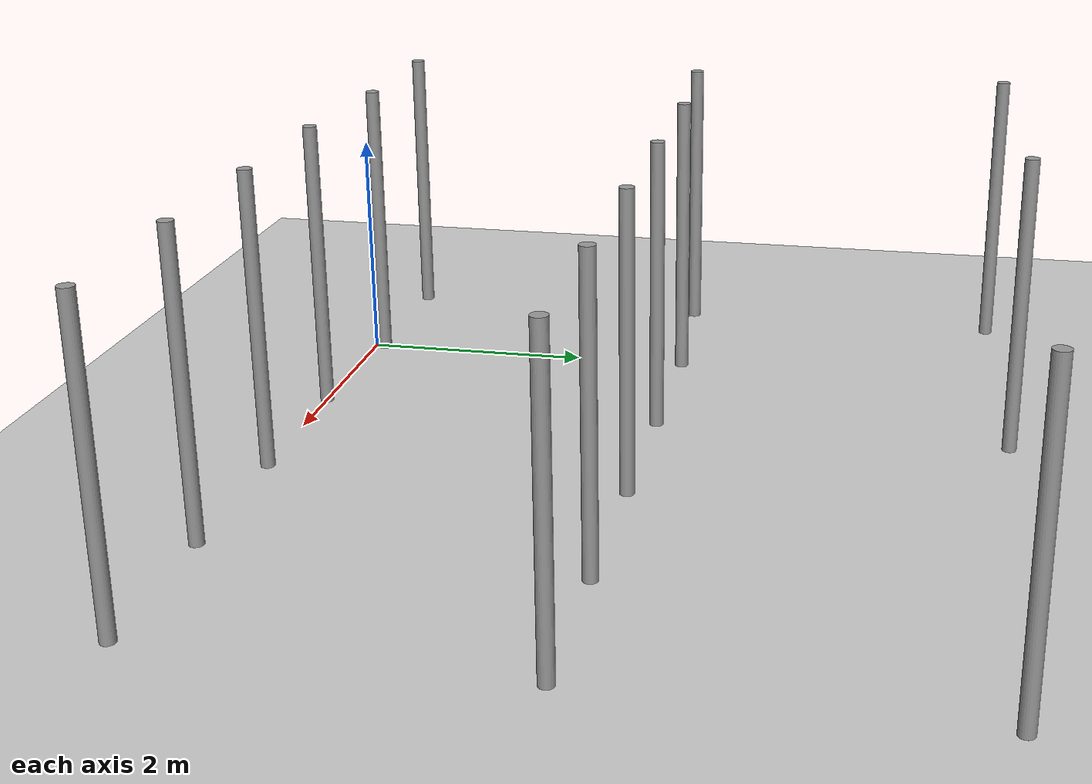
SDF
<sdf version="1.6">
 <world name="default">
  <model name="ground_plane">
   <static>1</static>
   <link name="link">
    <collision name="collision">
     <geometry><plane><normal>0 0 1</normal><size>100 100</size></plane></geometry>
     <surface><friction><ode><mu>100</mu><mu2>50</mu2></ode></friction></surface>
    </collision>
    <visual name="visual">
     <cast_shadows>0</cast_shadows>
     <geometry><plane><normal>0 0 1</normal><size>100 100</size></plane></geometry>
     <material>
      <script><uri>file://media/materials/scripts/gazebo.material</uri><name>Gazebo/Grey</name></script>
     </material>
    </visual>
   </link>
  </model>
  <model name="pole_8">
   <link name="link_0">
    <inertial>
     <mass>0.0364582</mass>
     <inertia>
      <ixx>0.00312124</ixx>
      <ixy>0</ixy>
      <ixz>0</ixz>
      <iyy>0.00312124</iyy>
      <iyz>0</iyz>
      <izz>0.00016615</izz>
     </inertia>
    </inertial>
    <visual name="visual">
     <geometry><cylinder><radius>0.06</radius><length>2.5</length></cylinder></geometry>
     <material>
      <lighting>1</lighting>
      <script><uri>file://media/materials/scripts/gazebo.material</uri><name>Gazebo/Grey</name></script>
      <ambient>0.3 0.3 0.3 1</ambient>
      <diffuse>0.7 0.7 0.7 1</diffuse>
      <specular>0.01 0.01 0.01 1</specular>
      <emissive>0 0 0 1</emissive>
      <shader type="vertex"><normal_map>__default__</normal_map></shader>
     </material>
    </visual>
    <collision name="collision">
     <geometry><cylinder><radius>0.06</radius><length>2.5</length></cylinder></geometry>
     <surface>
      <friction>
       <ode><mu>1</mu><mu2>1</mu2><fdir1>0 0 0</fdir1><slip1>0</slip1><slip2>0</slip2></ode>
       <torsional>
        <coefficient>1</coefficient>
        <patch_radius>0</patch_radius>
        <surface_radius>0</surface_radius>
        <use_patch_radius>1</use_patch_radius>
        <ode><slip>0</slip></ode>
       </torsional>
      </friction>
      <bounce><restitution_coefficient>0</restitution_coefficient><threshold>1e+06</threshold></bounce>
      <contact>
       <collide_without_contact>0</collide_without_contact>
       <collide_without_contact_bitmask>1</collide_without_contact_bitmask>
       <collide_bitmask>1</collide_bitmask>
       <ode>
        <soft_cfm>0</soft_cfm>
        <soft_erp>0.2</soft_erp>
        <kp>1e+13</kp>
        <kd>1</kd>
        <max_vel>0.01</max_vel>
        <min_depth>0</min_depth>
       </ode>
       <bullet>
        <split_impulse>1</split_impulse>
        <split_impulse_penetration_threshold>-0.01</split_impulse_penetration_threshold>
        <soft_cfm>0</soft_cfm>
        <soft_erp>0.2</soft_erp>
        <kp>1e+13</kp>
        <kd>1</kd>
       </bullet>
      </contact>
     </surface>
    </collision>
   </link>
   <static>0</static>
   <pose>1.40422 0.001483 1.24999 -1e-06 -0 -0.018484</pose>
  </model>
  <model name="pole_9">
   <link name="link_0">
    <inertial>
     <mass>0.0364582</mass>
     <inertia>
      <ixx>0.00312124</ixx>
      <ixy>0</ixy>
      <ixz>0</ixz>
      <iyy>0.00312124</iyy>
      <iyz>0</iyz>
      <izz>0.00016615</izz>
     </inertia>
    </inertial>
    <visual name="visual">
     <geometry><cylinder><radius>0.06</radius><length>2.5</length></cylinder></geometry>
     <material>
      <lighting>1</lighting>
      <script><uri>file://media/materials/scripts/gazebo.material</uri><name>Gazebo/Grey</name></script>
      <ambient>0.3 0.3 0.3 1</ambient>
      <diffuse>0.7 0.7 0.7 1</diffuse>
      <specular>0.01 0.01 0.01 1</specular>
      <emissive>0 0 0 1</emissive>
      <shader type="vertex"><normal_map>__default__</normal_map></shader>
     </material>
    </visual>
    <collision name="collision">
     <geometry><cylinder><radius>0.06</radius><length>2.5</length></cylinder></geometry>
     <surface>
      <friction>
       <ode><mu>1</mu><mu2>1</mu2><fdir1>0 0 0</fdir1><slip1>0</slip1><slip2>0</slip2></ode>
       <torsional>
        <coefficient>1</coefficient>
        <patch_radius>0</patch_radius>
        <surface_radius>0</surface_radius>
        <use_patch_radius>1</use_patch_radius>
        <ode><slip>0</slip></ode>
       </torsional>
      </friction>
      <bounce><restitution_coefficient>0</restitution_coefficient><threshold>1e+06</threshold></bounce>
      <contact>
       <collide_without_contact>0</collide_without_contact>
       <collide_without_contact_bitmask>1</collide_without_contact_bitmask>
       <collide_bitmask>1</collide_bitmask>
       <ode>
        <soft_cfm>0</soft_cfm>
        <soft_erp>0.2</soft_erp>
        <kp>1e+13</kp>
        <kd>1</kd>
        <max_vel>0.01</max_vel>
        <min_depth>0</min_depth>
       </ode>
       <bullet>
        <split_impulse>1</split_impulse>
        <split_impulse_penetration_threshold>-0.01</split_impulse_penetration_threshold>
        <soft_cfm>0</soft_cfm>
        <soft_erp>0.2</soft_erp>
        <kp>1e+13</kp>
        <kd>1</kd>
       </bullet>
      </contact>
     </surface>
    </collision>
   </link>
   <static>0</static>
   <pose>2.80803 0.001707 1.25 -1e-06 -1e-06 -0.037733</pose>
  </model>
  <model name="pole_10">
   <link name="link_0">
    <inertial>
     <mass>0.0364582</mass>
     <inertia>
      <ixx>0.00312124</ixx>
      <ixy>0</ixy>
      <ixz>0</ixz>
      <iyy>0.00312124</iyy>
      <iyz>0</iyz>
      <izz>0.00016615</izz>
     </inertia>
    </inertial>
    <visual name="visual">
     <geometry><cylinder><radius>0.06</radius><length>2.5</length></cylinder></geometry>
     <material>
      <lighting>1</lighting>
      <script><uri>file://media/materials/scripts/gazebo.material</uri><name>Gazebo/Grey</name></script>
      <ambient>0.3 0.3 0.3 1</ambient>
      <diffuse>0.7 0.7 0.7 1</diffuse>
      <specular>0.01 0.01 0.01 1</specular>
      <emissive>0 0 0 1</emissive>
      <shader type="vertex"><normal_map>__default__</normal_map></shader>
     </material>
    </visual>
    <collision name="collision">
     <geometry><cylinder><radius>0.06</radius><length>2.5</length></cylinder></geometry>
     <surface>
      <friction>
       <ode><mu>1</mu><mu2>1</mu2><fdir1>0 0 0</fdir1><slip1>0</slip1><slip2>0</slip2></ode>
       <torsional>
        <coefficient>1</coefficient>
        <patch_radius>0</patch_radius>
        <surface_radius>0</surface_radius>
        <use_patch_radius>1</use_patch_radius>
        <ode><slip>0</slip></ode>
       </torsional>
      </friction>
      <bounce><restitution_coefficient>0</restitution_coefficient><threshold>1e+06</threshold></bounce>
      <contact>
       <collide_without_contact>0</collide_without_contact>
       <collide_without_contact_bitmask>1</collide_without_contact_bitmask>
       <collide_bitmask>1</collide_bitmask>
       <ode>
        <soft_cfm>0</soft_cfm>
        <soft_erp>0.2</soft_erp>
        <kp>1e+13</kp>
        <kd>1</kd>
        <max_vel>0.01</max_vel>
        <min_depth>0</min_depth>
       </ode>
       <bullet>
        <split_impulse>1</split_impulse>
        <split_impulse_penetration_threshold>-0.01</split_impulse_penetration_threshold>
        <soft_cfm>0</soft_cfm>
        <soft_erp>0.2</soft_erp>
        <kp>1e+13</kp>
        <kd>1</kd>
       </bullet>
      </contact>
     </surface>
    </collision>
   </link>
   <static>0</static>
   <pose>4.20396 0.00159 1.25 -0 2e-06 -0.021452</pose>
  </model>
  <model name="pole_11">
   <link name="link_0">
    <inertial>
     <mass>0.0364582</mass>
     <inertia>
      <ixx>0.00312124</ixx>
      <ixy>0</ixy>
      <ixz>0</ixz>
      <iyy>0.00312124</iyy>
      <iyz>0</iyz>
      <izz>0.00016615</izz>
     </inertia>
    </inertial>
    <visual name="visual">
     <geometry><cylinder><radius>0.06</radius><length>2.5</length></cylinder></geometry>
     <material>
      <lighting>1</lighting>
      <script><uri>file://media/materials/scripts/gazebo.material</uri><name>Gazebo/Grey</name></script>
      <ambient>0.3 0.3 0.3 1</ambient>
      <diffuse>0.7 0.7 0.7 1</diffuse>
      <specular>0.01 0.01 0.01 1</specular>
      <emissive>0 0 0 1</emissive>
      <shader type="vertex"><normal_map>__default__</normal_map></shader>
     </material>
    </visual>
    <collision name="collision">
     <geometry><cylinder><radius>0.06</radius><length>2.5</length></cylinder></geometry>
     <surface>
      <friction>
       <ode><mu>1</mu><mu2>1</mu2><fdir1>0 0 0</fdir1><slip1>0</slip1><slip2>0</slip2></ode>
       <torsional>
        <coefficient>1</coefficient>
        <patch_radius>0</patch_radius>
        <surface_radius>0</surface_radius>
        <use_patch_radius>1</use_patch_radius>
        <ode><slip>0</slip></ode>
       </torsional>
      </friction>
      <bounce><restitution_coefficient>0</restitution_coefficient><threshold>1e+06</threshold></bounce>
      <contact>
       <collide_without_contact>0</collide_without_contact>
       <collide_without_contact_bitmask>1</collide_without_contact_bitmask>
       <collide_bitmask>1</collide_bitmask>
       <ode>
        <soft_cfm>0</soft_cfm>
        <soft_erp>0.2</soft_erp>
        <kp>1e+13</kp>
        <kd>1</kd>
        <max_vel>0.01</max_vel>
        <min_depth>0</min_depth>
       </ode>
       <bullet>
        <split_impulse>1</split_impulse>
        <split_impulse_penetration_threshold>-0.01</split_impulse_penetration_threshold>
        <soft_cfm>0</soft_cfm>
        <soft_erp>0.2</soft_erp>
        <kp>1e+13</kp>
        <kd>1</kd>
       </bullet>
      </contact>
     </surface>
    </collision>
   </link>
   <static>0</static>
   <pose>5.61623 0.001441 1.25 -1e-06 0 -0.020806</pose>
  </model>
  <model name="pole_11_clone">
   <link name="link_0">
    <inertial>
     <mass>0.0364582</mass>
     <inertia>
      <ixx>0.00312124</ixx>
      <ixy>0</ixy>
      <ixz>0</ixz>
      <iyy>0.00312124</iyy>
      <iyz>0</iyz>
      <izz>0.00016615</izz>
     </inertia>
    </inertial>
    <visual name="visual">
     <geometry><cylinder><radius>0.06</radius><length>2.5</length></cylinder></geometry>
     <material>
      <lighting>1</lighting>
      <script><uri>file://media/materials/scripts/gazebo.material</uri><name>Gazebo/Grey</name></script>
      <ambient>0.3 0.3 0.3 1</ambient>
      <diffuse>0.7 0.7 0.7 1</diffuse>
      <specular>0.01 0.01 0.01 1</specular>
      <emissive>0 0 0 1</emissive>
      <shader type="vertex"><normal_map>__default__</normal_map></shader>
     </material>
    </visual>
    <collision name="collision">
     <geometry><cylinder><radius>0.06</radius><length>2.5</length></cylinder></geometry>
     <surface>
      <friction>
       <ode><mu>1</mu><mu2>1</mu2><fdir1>0 0 0</fdir1><slip1>0</slip1><slip2>0</slip2></ode>
       <torsional>
        <coefficient>1</coefficient>
        <patch_radius>0</patch_radius>
        <surface_radius>0</surface_radius>
        <use_patch_radius>1</use_patch_radius>
        <ode><slip>0</slip></ode>
       </torsional>
      </friction>
      <bounce><restitution_coefficient>0</restitution_coefficient><threshold>1e+06</threshold></bounce>
      <contact>
       <collide_without_contact>0</collide_without_contact>
       <collide_without_contact_bitmask>1</collide_without_contact_bitmask>
       <collide_bitmask>1</collide_bitmask>
       <ode>
        <soft_cfm>0</soft_cfm>
        <soft_erp>0.2</soft_erp>
        <kp>1e+13</kp>
        <kd>1</kd>
        <max_vel>0.01</max_vel>
        <min_depth>0</min_depth>
       </ode>
       <bullet>
        <split_impulse>1</split_impulse>
        <split_impulse_penetration_threshold>-0.01</split_impulse_penetration_threshold>
        <soft_cfm>0</soft_cfm>
        <soft_erp>0.2</soft_erp>
        <kp>1e+13</kp>
        <kd>1</kd>
       </bullet>
      </contact>
     </surface>
    </collision>
   </link>
   <static>0</static>
   <pose>0.000716 2.98376 1.24999 -1e-06 0 -0.028327</pose>
  </model>
  <model name="pole_2">
   <link name="link_0">
    <inertial>
     <mass>0.0364582</mass>
     <inertia>
      <ixx>0.00312124</ixx>
      <ixy>0</ixy>
      <ixz>0</ixz>
      <iyy>0.00312124</iyy>
      <iyz>0</iyz>
      <izz>0.00016615</izz>
     </inertia>
    </inertial>
    <visual name="visual">
     <geometry><cylinder><radius>0.06</radius><length>2.5</length></cylinder></geometry>
     <material>
      <lighting>1</lighting>
      <script><uri>file://media/materials/scripts/gazebo.material</uri><name>Gazebo/Grey</name></script>
      <ambient>0.3 0.3 0.3 1</ambient>
      <diffuse>0.7 0.7 0.7 1</diffuse>
      <specular>0.01 0.01 0.01 1</specular>
      <emissive>0 0 0 1</emissive>
      <shader type="vertex"><normal_map>__default__</normal_map></shader>
     </material>
    </visual>
    <collision name="collision">
     <geometry><cylinder><radius>0.06</radius><length>2.5</length></cylinder></geometry>
     <surface>
      <friction>
       <ode><mu>1</mu><mu2>1</mu2><fdir1>0 0 0</fdir1><slip1>0</slip1><slip2>0</slip2></ode>
       <torsional>
        <coefficient>1</coefficient>
        <patch_radius>0</patch_radius>
        <surface_radius>0</surface_radius>
        <use_patch_radius>1</use_patch_radius>
        <ode><slip>0</slip></ode>
       </torsional>
      </friction>
      <bounce><restitution_coefficient>0</restitution_coefficient><threshold>1e+06</threshold></bounce>
      <contact>
       <collide_without_contact>0</collide_without_contact>
       <collide_without_contact_bitmask>1</collide_without_contact_bitmask>
       <collide_bitmask>1</collide_bitmask>
       <ode>
        <soft_cfm>0</soft_cfm>
        <soft_erp>0.2</soft_erp>
        <kp>1e+13</kp>
        <kd>1</kd>
        <max_vel>0.01</max_vel>
        <min_depth>0</min_depth>
       </ode>
       <bullet>
        <split_impulse>1</split_impulse>
        <split_impulse_penetration_threshold>-0.01</split_impulse_penetration_threshold>
        <soft_cfm>0</soft_cfm>
        <soft_erp>0.2</soft_erp>
        <kp>1e+13</kp>
        <kd>1</kd>
       </bullet>
      </contact>
     </surface>
    </collision>
   </link>
   <static>0</static>
   <pose>0.034203 0.094334 1.24999 0 1e-06 0.046858</pose>
  </model>
  <model name="pole_3">
   <link name="link_0">
    <inertial>
     <mass>0.0364582</mass>
     <inertia>
      <ixx>0.00312124</ixx>
      <ixy>0</ixy>
      <ixz>0</ixz>
      <iyy>0.00312124</iyy>
      <iyz>0</iyz>
      <izz>0.00016615</izz>
     </inertia>
    </inertial>
    <visual name="visual">
     <geometry><cylinder><radius>0.06</radius><length>2.5</length></cylinder></geometry>
     <material>
      <lighting>1</lighting>
      <script><uri>file://media/materials/scripts/gazebo.material</uri><name>Gazebo/Grey</name></script>
      <ambient>0.3 0.3 0.3 1</ambient>
      <diffuse>0.7 0.7 0.7 1</diffuse>
      <specular>0.01 0.01 0.01 1</specular>
      <emissive>0 0 0 1</emissive>
      <shader type="vertex"><normal_map>__default__</normal_map></shader>
     </material>
    </visual>
    <collision name="collision">
     <geometry><cylinder><radius>0.06</radius><length>2.5</length></cylinder></geometry>
     <surface>
      <friction>
       <ode><mu>1</mu><mu2>1</mu2><fdir1>0 0 0</fdir1><slip1>0</slip1><slip2>0</slip2></ode>
       <torsional>
        <coefficient>1</coefficient>
        <patch_radius>0</patch_radius>
        <surface_radius>0</surface_radius>
        <use_patch_radius>1</use_patch_radius>
        <ode><slip>0</slip></ode>
       </torsional>
      </friction>
      <bounce><restitution_coefficient>0</restitution_coefficient><threshold>1e+06</threshold></bounce>
      <contact>
       <collide_without_contact>0</collide_without_contact>
       <collide_without_contact_bitmask>1</collide_without_contact_bitmask>
       <collide_bitmask>1</collide_bitmask>
       <ode>
        <soft_cfm>0</soft_cfm>
        <soft_erp>0.2</soft_erp>
        <kp>1e+13</kp>
        <kd>1</kd>
        <max_vel>0.01</max_vel>
        <min_depth>0</min_depth>
       </ode>
       <bullet>
        <split_impulse>1</split_impulse>
        <split_impulse_penetration_threshold>-0.01</split_impulse_penetration_threshold>
        <soft_cfm>0</soft_cfm>
        <soft_erp>0.2</soft_erp>
        <kp>1e+13</kp>
        <kd>1</kd>
       </bullet>
      </contact>
     </surface>
    </collision>
   </link>
   <static>0</static>
   <pose>1.40473 2.98127 1.25 -1e-06 0 -0.014553</pose>
  </model>
  <model name="pole_5">
   <link name="link_0">
    <inertial>
     <mass>0.0364582</mass>
     <inertia>
      <ixx>0.00312124</ixx>
      <ixy>0</ixy>
      <ixz>0</ixz>
      <iyy>0.00312124</iyy>
      <iyz>0</iyz>
      <izz>0.00016615</izz>
     </inertia>
    </inertial>
    <visual name="visual">
     <geometry><cylinder><radius>0.06</radius><length>2.5</length></cylinder></geometry>
     <material>
      <lighting>1</lighting>
      <script><uri>file://media/materials/scripts/gazebo.material</uri><name>Gazebo/Grey</name></script>
      <ambient>0.3 0.3 0.3 1</ambient>
      <diffuse>0.7 0.7 0.7 1</diffuse>
      <specular>0.01 0.01 0.01 1</specular>
      <emissive>0 0 0 1</emissive>
      <shader type="vertex"><normal_map>__default__</normal_map></shader>
     </material>
    </visual>
    <collision name="collision">
     <geometry><cylinder><radius>0.06</radius><length>2.5</length></cylinder></geometry>
     <surface>
      <friction>
       <ode><mu>1</mu><mu2>1</mu2><fdir1>0 0 0</fdir1><slip1>0</slip1><slip2>0</slip2></ode>
       <torsional>
        <coefficient>1</coefficient>
        <patch_radius>0</patch_radius>
        <surface_radius>0</surface_radius>
        <use_patch_radius>1</use_patch_radius>
        <ode><slip>0</slip></ode>
       </torsional>
      </friction>
      <bounce><restitution_coefficient>0</restitution_coefficient><threshold>1e+06</threshold></bounce>
      <contact>
       <collide_without_contact>0</collide_without_contact>
       <collide_without_contact_bitmask>1</collide_without_contact_bitmask>
       <collide_bitmask>1</collide_bitmask>
       <ode>
        <soft_cfm>0</soft_cfm>
        <soft_erp>0.2</soft_erp>
        <kp>1e+13</kp>
        <kd>1</kd>
        <max_vel>0.01</max_vel>
        <min_depth>0</min_depth>
       </ode>
       <bullet>
        <split_impulse>1</split_impulse>
        <split_impulse_penetration_threshold>-0.01</split_impulse_penetration_threshold>
        <soft_cfm>0</soft_cfm>
        <soft_erp>0.2</soft_erp>
        <kp>1e+13</kp>
        <kd>1</kd>
       </bullet>
      </contact>
     </surface>
    </collision>
   </link>
   <static>0</static>
   <pose>2.79585 2.98127 1.25 -0 2e-06 -0.015278</pose>
  </model>
  <model name="pole_6">
   <link name="link_0">
    <inertial>
     <mass>0.0364582</mass>
     <inertia>
      <ixx>0.00312124</ixx>
      <ixy>0</ixy>
      <ixz>0</ixz>
      <iyy>0.00312124</iyy>
      <iyz>0</iyz>
      <izz>0.00016615</izz>
     </inertia>
    </inertial>
    <visual name="visual">
     <geometry><cylinder><radius>0.06</radius><length>2.5</length></cylinder></geometry>
     <material>
      <lighting>1</lighting>
      <script><uri>file://media/materials/scripts/gazebo.material</uri><name>Gazebo/Grey</name></script>
      <ambient>0.3 0.3 0.3 1</ambient>
      <diffuse>0.7 0.7 0.7 1</diffuse>
      <specular>0.01 0.01 0.01 1</specular>
      <emissive>0 0 0 1</emissive>
      <shader type="vertex"><normal_map>__default__</normal_map></shader>
     </material>
    </visual>
    <collision name="collision">
     <geometry><cylinder><radius>0.06</radius><length>2.5</length></cylinder></geometry>
     <surface>
      <friction>
       <ode><mu>1</mu><mu2>1</mu2><fdir1>0 0 0</fdir1><slip1>0</slip1><slip2>0</slip2></ode>
       <torsional>
        <coefficient>1</coefficient>
        <patch_radius>0</patch_radius>
        <surface_radius>0</surface_radius>
        <use_patch_radius>1</use_patch_radius>
        <ode><slip>0</slip></ode>
       </torsional>
      </friction>
      <bounce><restitution_coefficient>0</restitution_coefficient><threshold>1e+06</threshold></bounce>
      <contact>
       <collide_without_contact>0</collide_without_contact>
       <collide_without_contact_bitmask>1</collide_without_contact_bitmask>
       <collide_bitmask>1</collide_bitmask>
       <ode>
        <soft_cfm>0</soft_cfm>
        <soft_erp>0.2</soft_erp>
        <kp>1e+13</kp>
        <kd>1</kd>
        <max_vel>0.01</max_vel>
        <min_depth>0</min_depth>
       </ode>
       <bullet>
        <split_impulse>1</split_impulse>
        <split_impulse_penetration_threshold>-0.01</split_impulse_penetration_threshold>
        <soft_cfm>0</soft_cfm>
        <soft_erp>0.2</soft_erp>
        <kp>1e+13</kp>
        <kd>1</kd>
       </bullet>
      </contact>
     </surface>
    </collision>
   </link>
   <static>0</static>
   <pose>4.2224 2.98107 1.24999 -1e-06 -0 -0.013117</pose>
  </model>
  <model name="pole_7">
   <link name="link_0">
    <inertial>
     <mass>0.0364582</mass>
     <inertia>
      <ixx>0.00312124</ixx>
      <ixy>0</ixy>
      <ixz>0</ixz>
      <iyy>0.00312124</iyy>
      <iyz>0</iyz>
      <izz>0.00016615</izz>
     </inertia>
    </inertial>
    <visual name="visual">
     <geometry><cylinder><radius>0.06</radius><length>2.5</length></cylinder></geometry>
     <material>
      <lighting>1</lighting>
      <script><uri>file://media/materials/scripts/gazebo.material</uri><name>Gazebo/Grey</name></script>
      <ambient>0.3 0.3 0.3 1</ambient>
      <diffuse>0.7 0.7 0.7 1</diffuse>
      <specular>0.01 0.01 0.01 1</specular>
      <emissive>0 0 0 1</emissive>
      <shader type="vertex"><normal_map>__default__</normal_map></shader>
     </material>
    </visual>
    <collision name="collision">
     <geometry><cylinder><radius>0.06</radius><length>2.5</length></cylinder></geometry>
     <surface>
      <friction>
       <ode><mu>1</mu><mu2>1</mu2><fdir1>0 0 0</fdir1><slip1>0</slip1><slip2>0</slip2></ode>
       <torsional>
        <coefficient>1</coefficient>
        <patch_radius>0</patch_radius>
        <surface_radius>0</surface_radius>
        <use_patch_radius>1</use_patch_radius>
        <ode><slip>0</slip></ode>
       </torsional>
      </friction>
      <bounce><restitution_coefficient>0</restitution_coefficient><threshold>1e+06</threshold></bounce>
      <contact>
       <collide_without_contact>0</collide_without_contact>
       <collide_without_contact_bitmask>1</collide_without_contact_bitmask>
       <collide_bitmask>1</collide_bitmask>
       <ode>
        <soft_cfm>0</soft_cfm>
        <soft_erp>0.2</soft_erp>
        <kp>1e+13</kp>
        <kd>1</kd>
        <max_vel>0.01</max_vel>
        <min_depth>0</min_depth>
       </ode>
       <bullet>
        <split_impulse>1</split_impulse>
        <split_impulse_penetration_threshold>-0.01</split_impulse_penetration_threshold>
        <soft_cfm>0</soft_cfm>
        <soft_erp>0.2</soft_erp>
        <kp>1e+13</kp>
        <kd>1</kd>
       </bullet>
      </contact>
     </surface>
    </collision>
   </link>
   <static>0</static>
   <pose>5.60734 2.98116 1.24999 -0 -1e-06 -0.013637</pose>
  </model>
  <model name="pole_12">
   <link name="link_0">
    <inertial>
     <mass>0.0364582</mass>
     <inertia>
      <ixx>0.00312124</ixx>
      <ixy>0</ixy>
      <ixz>0</ixz>
      <iyy>0.00312124</iyy>
      <iyz>0</iyz>
      <izz>0.00016615</izz>
     </inertia>
    </inertial>
    <visual name="visual">
     <geometry><cylinder><radius>0.06</radius><length>2.5</length></cylinder></geometry>
     <material>
      <lighting>1</lighting>
      <script><uri>file://media/materials/scripts/gazebo.material</uri><name>Gazebo/Grey</name></script>
      <ambient>0.3 0.3 0.3 1</ambient>
      <diffuse>0.7 0.7 0.7 1</diffuse>
      <specular>0.01 0.01 0.01 1</specular>
      <emissive>0 0 0 1</emissive>
      <shader type="vertex"><normal_map>__default__</normal_map></shader>
     </material>
    </visual>
    <collision name="collision">
     <geometry><cylinder><radius>0.06</radius><length>2.5</length></cylinder></geometry>
     <surface>
      <friction>
       <ode><mu>1</mu><mu2>1</mu2><fdir1>0 0 0</fdir1><slip1>0</slip1><slip2>0</slip2></ode>
       <torsional>
        <coefficient>1</coefficient>
        <patch_radius>0</patch_radius>
        <surface_radius>0</surface_radius>
        <use_patch_radius>1</use_patch_radius>
        <ode><slip>0</slip></ode>
       </torsional>
      </friction>
      <bounce><restitution_coefficient>0</restitution_coefficient><threshold>1e+06</threshold></bounce>
      <contact>
       <collide_without_contact>0</collide_without_contact>
       <collide_without_contact_bitmask>1</collide_without_contact_bitmask>
       <collide_bitmask>1</collide_bitmask>
       <ode>
        <soft_cfm>0</soft_cfm>
        <soft_erp>0.2</soft_erp>
        <kp>1e+13</kp>
        <kd>1</kd>
        <max_vel>0.01</max_vel>
        <min_depth>0</min_depth>
       </ode>
       <bullet>
        <split_impulse>1</split_impulse>
        <split_impulse_penetration_threshold>-0.01</split_impulse_penetration_threshold>
        <soft_cfm>0</soft_cfm>
        <soft_erp>0.2</soft_erp>
        <kp>1e+13</kp>
        <kd>1</kd>
       </bullet>
      </contact>
     </surface>
    </collision>
   </link>
   <static>0</static>
   <pose>1.41362 5.9611 1.24999 -1e-06 1e-06 -0.011962</pose>
  </model>
  <model name="pole_15">
   <link name="link_0">
    <inertial>
     <mass>0.0364582</mass>
     <inertia>
      <ixx>0.00312124</ixx>
      <ixy>0</ixy>
      <ixz>0</ixz>
      <iyy>0.00312124</iyy>
      <iyz>0</iyz>
      <izz>0.00016615</izz>
     </inertia>
    </inertial>
    <visual name="visual">
     <geometry><cylinder><radius>0.06</radius><length>2.5</length></cylinder></geometry>
     <material>
      <lighting>1</lighting>
      <script><uri>file://media/materials/scripts/gazebo.material</uri><name>Gazebo/Grey</name></script>
      <ambient>0.3 0.3 0.3 1</ambient>
      <diffuse>0.7 0.7 0.7 1</diffuse>
      <specular>0.01 0.01 0.01 1</specular>
      <emissive>0 0 0 1</emissive>
      <shader type="vertex"><normal_map>__default__</normal_map></shader>
     </material>
    </visual>
    <collision name="collision">
     <geometry><cylinder><radius>0.06</radius><length>2.5</length></cylinder></geometry>
     <surface>
      <friction>
       <ode><mu>1</mu><mu2>1</mu2><fdir1>0 0 0</fdir1><slip1>0</slip1><slip2>0</slip2></ode>
       <torsional>
        <coefficient>1</coefficient>
        <patch_radius>0</patch_radius>
        <surface_radius>0</surface_radius>
        <use_patch_radius>1</use_patch_radius>
        <ode><slip>0</slip></ode>
       </torsional>
      </friction>
      <bounce><restitution_coefficient>0</restitution_coefficient><threshold>1e+06</threshold></bounce>
      <contact>
       <collide_without_contact>0</collide_without_contact>
       <collide_without_contact_bitmask>1</collide_without_contact_bitmask>
       <collide_bitmask>1</collide_bitmask>
       <ode>
        <soft_cfm>0</soft_cfm>
        <soft_erp>0.2</soft_erp>
        <kp>1e+13</kp>
        <kd>1</kd>
        <max_vel>0.01</max_vel>
        <min_depth>0</min_depth>
       </ode>
       <bullet>
        <split_impulse>1</split_impulse>
        <split_impulse_penetration_threshold>-0.01</split_impulse_penetration_threshold>
        <soft_cfm>0</soft_cfm>
        <soft_erp>0.2</soft_erp>
        <kp>1e+13</kp>
        <kd>1</kd>
       </bullet>
      </contact>
     </surface>
    </collision>
   </link>
   <static>0</static>
   <pose>5.62348 5.96085 1.24999 -0 2e-06 -0.009396</pose>
  </model>
  <model name="pole_2_clone">
   <link name="link_0">
    <inertial>
     <mass>0.0364582</mass>
     <inertia>
      <ixx>0.00312124</ixx>
      <ixy>0</ixy>
      <ixz>0</ixz>
      <iyy>0.00312124</iyy>
      <iyz>0</iyz>
      <izz>0.00016615</izz>
     </inertia>
    </inertial>
    <visual name="visual">
     <geometry><cylinder><radius>0.06</radius><length>2.5</length></cylinder></geometry>
     <material>
      <lighting>1</lighting>
      <script><uri>file://media/materials/scripts/gazebo.material</uri><name>Gazebo/Grey</name></script>
      <ambient>0.3 0.3 0.3 1</ambient>
      <diffuse>0.7 0.7 0.7 1</diffuse>
      <specular>0.01 0.01 0.01 1</specular>
      <emissive>0 0 0 1</emissive>
      <shader type="vertex"><normal_map>__default__</normal_map></shader>
     </material>
    </visual>
    <collision name="collision">
     <geometry><cylinder><radius>0.06</radius><length>2.5</length></cylinder></geometry>
     <surface>
      <friction>
       <ode><mu>1</mu><mu2>1</mu2><fdir1>0 0 0</fdir1><slip1>0</slip1><slip2>0</slip2></ode>
       <torsional>
        <coefficient>1</coefficient>
        <patch_radius>0</patch_radius>
        <surface_radius>0</surface_radius>
        <use_patch_radius>1</use_patch_radius>
        <ode><slip>0</slip></ode>
       </torsional>
      </friction>
      <bounce><restitution_coefficient>0</restitution_coefficient><threshold>1e+06</threshold></bounce>
      <contact>
       <collide_without_contact>0</collide_without_contact>
       <collide_without_contact_bitmask>1</collide_without_contact_bitmask>
       <collide_bitmask>1</collide_bitmask>
       <ode>
        <soft_cfm>0</soft_cfm>
        <soft_erp>0.2</soft_erp>
        <kp>1e+13</kp>
        <kd>1</kd>
        <max_vel>0.01</max_vel>
        <min_depth>0</min_depth>
       </ode>
       <bullet>
        <split_impulse>1</split_impulse>
        <split_impulse_penetration_threshold>-0.01</split_impulse_penetration_threshold>
        <soft_cfm>0</soft_cfm>
        <soft_erp>0.2</soft_erp>
        <kp>1e+13</kp>
        <kd>1</kd>
       </bullet>
      </contact>
     </surface>
    </collision>
   </link>
   <static>0</static>
   <pose>-1.39995 0.092152 1.25 -1e-06 -0 0.044746</pose>
  </model>
  <model name="pole_2_clone_0">
   <link name="link_0">
    <inertial>
     <mass>0.0364582</mass>
     <inertia>
      <ixx>0.00312124</ixx>
      <ixy>0</ixy>
      <ixz>0</ixz>
      <iyy>0.00312124</iyy>
      <iyz>0</iyz>
      <izz>0.00016615</izz>
     </inertia>
    </inertial>
    <visual name="visual">
     <geometry><cylinder><radius>0.06</radius><length>2.5</length></cylinder></geometry>
     <material>
      <lighting>1</lighting>
      <script><uri>file://media/materials/scripts/gazebo.material</uri><name>Gazebo/Grey</name></script>
      <ambient>0.3 0.3 0.3 1</ambient>
      <diffuse>0.7 0.7 0.7 1</diffuse>
      <specular>0.01 0.01 0.01 1</specular>
      <emissive>0 0 0 1</emissive>
      <shader type="vertex"><normal_map>__default__</normal_map></shader>
     </material>
    </visual>
    <collision name="collision">
     <geometry><cylinder><radius>0.06</radius><length>2.5</length></cylinder></geometry>
     <surface>
      <friction>
       <ode><mu>1</mu><mu2>1</mu2><fdir1>0 0 0</fdir1><slip1>0</slip1><slip2>0</slip2></ode>
       <torsional>
        <coefficient>1</coefficient>
        <patch_radius>0</patch_radius>
        <surface_radius>0</surface_radius>
        <use_patch_radius>1</use_patch_radius>
        <ode><slip>0</slip></ode>
       </torsional>
      </friction>
      <bounce><restitution_coefficient>0</restitution_coefficient><threshold>1e+06</threshold></bounce>
      <contact>
       <collide_without_contact>0</collide_without_contact>
       <collide_without_contact_bitmask>1</collide_without_contact_bitmask>
       <collide_bitmask>1</collide_bitmask>
       <ode>
        <soft_cfm>0</soft_cfm>
        <soft_erp>0.2</soft_erp>
        <kp>1e+13</kp>
        <kd>1</kd>
        <max_vel>0.01</max_vel>
        <min_depth>0</min_depth>
       </ode>
       <bullet>
        <split_impulse>1</split_impulse>
        <split_impulse_penetration_threshold>-0.01</split_impulse_penetration_threshold>
        <soft_cfm>0</soft_cfm>
        <soft_erp>0.2</soft_erp>
        <kp>1e+13</kp>
        <kd>1</kd>
       </bullet>
      </contact>
     </surface>
    </collision>
   </link>
   <static>0</static>
   <pose>-1.39997 2.90021 1.24999 -1e-06 -1e-06 0.0446</pose>
  </model>
  <model name="pole_2_clone_1">
   <link name="link_0">
    <inertial>
     <mass>0.0364582</mass>
     <inertia>
      <ixx>0.00312124</ixx>
      <ixy>0</ixy>
      <ixz>0</ixz>
      <iyy>0.00312124</iyy>
      <iyz>0</iyz>
      <izz>0.00016615</izz>
     </inertia>
    </inertial>
    <visual name="visual">
     <geometry><cylinder><radius>0.06</radius><length>2.5</length></cylinder></geometry>
     <material>
      <lighting>1</lighting>
      <script><uri>file://media/materials/scripts/gazebo.material</uri><name>Gazebo/Grey</name></script>
      <ambient>0.3 0.3 0.3 1</ambient>
      <diffuse>0.7 0.7 0.7 1</diffuse>
      <specular>0.01 0.01 0.01 1</specular>
      <emissive>0 0 0 1</emissive>
      <shader type="vertex"><normal_map>__default__</normal_map></shader>
     </material>
    </visual>
    <collision name="collision">
     <geometry><cylinder><radius>0.06</radius><length>2.5</length></cylinder></geometry>
     <surface>
      <friction>
       <ode><mu>1</mu><mu2>1</mu2><fdir1>0 0 0</fdir1><slip1>0</slip1><slip2>0</slip2></ode>
       <torsional>
        <coefficient>1</coefficient>
        <patch_radius>0</patch_radius>
        <surface_radius>0</surface_radius>
        <use_patch_radius>1</use_patch_radius>
        <ode><slip>0</slip></ode>
       </torsional>
      </friction>
      <bounce><restitution_coefficient>0</restitution_coefficient><threshold>1e+06</threshold></bounce>
      <contact>
       <collide_without_contact>0</collide_without_contact>
       <collide_without_contact_bitmask>1</collide_without_contact_bitmask>
       <collide_bitmask>1</collide_bitmask>
       <ode>
        <soft_cfm>0</soft_cfm>
        <soft_erp>0.2</soft_erp>
        <kp>1e+13</kp>
        <kd>1</kd>
        <max_vel>0.01</max_vel>
        <min_depth>0</min_depth>
       </ode>
       <bullet>
        <split_impulse>1</split_impulse>
        <split_impulse_penetration_threshold>-0.01</split_impulse_penetration_threshold>
        <soft_cfm>0</soft_cfm>
        <soft_erp>0.2</soft_erp>
        <kp>1e+13</kp>
        <kd>1</kd>
       </bullet>
      </contact>
     </surface>
    </collision>
   </link>
   <static>0</static>
   <pose>-1.39997 5.80021 1.25 -1e-06 -0 0.044355</pose>
  </model>
 </world>
</sdf>
